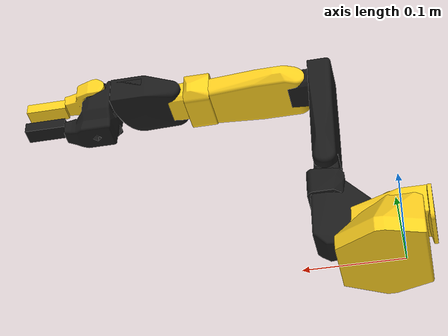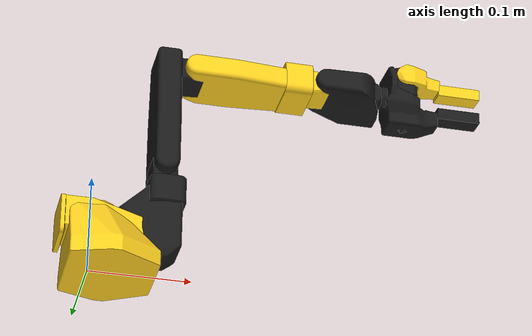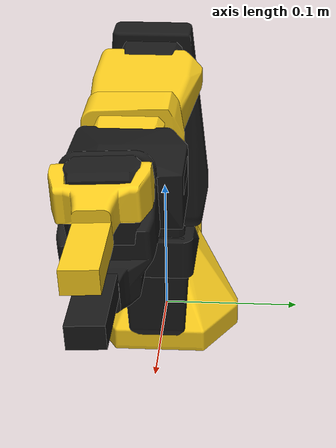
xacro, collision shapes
<?xml version="1.0"?>
<!-- Real SO-101: the sim URDF plus the STS3215 hardware interface. -->
<robot xmlns:xacro="http://www.ros.org/wiki/xacro" name="so101_new_calib">
  <xacro:arg name="port" default="/dev/ttyACM0"/>
  <xacro:arg name="calibration_file" default=""/>
  <!-- true: never write to the servos (limp arm). false: torque on, the arm follows commands. -->
  <xacro:arg name="read_only" default="true"/>
  <!-- Per mille of max torque; 500 = 50 % for the first tests, so a collision stalls instead of breaks. -->
  <xacro:arg name="torque_limit" default="500"/>
  <!-- Servo P gain for the arm joints (factory 32; LeRobot stores 16, which sags 5-6 deg when extended). -->
  <xacro:arg name="p_gain" default="32"/>

  <xacro:include filename="$(find so101_description)/urdf/so101.urdf"/>

  <!-- Arm joints: sim_rad = sign * deg2rad(lerobot_deg - offset_deg), checked against RViz (M8a).
       lo/hi: command limits = the URDF joint limits. -->
  <xacro:macro name="arm_joint" params="name lo hi sign:=1 offset_deg:=0.0">
    <joint name="${name}">
      <param name="sign">${sign}</param>
      <param name="offset_deg">${offset_deg}</param>
      <command_interface name="position">
        <param name="min">${lo}</param>
        <param name="max">${hi}</param>
      </command_interface>
      <state_interface name="position"/>
      <state_interface name="velocity"/>
      <state_interface name="effort"/>  <!-- servo load, fraction of max torque -->
    </joint>
  </xacro:macro>

  <ros2_control name="SO101Real" type="system">
    <hardware>
      <plugin>so101_hardware/SO101System</plugin>
      <param name="port">$(arg port)</param>
      <param name="calibration_file">$(arg calibration_file)</param>
      <param name="read_only">$(arg read_only)</param>
      <param name="torque_limit">$(arg torque_limit)</param>
      <param name="p_gain">$(arg p_gain)</param>
      <param name="max_velocity">2.5</param>  <!-- rad/s, arm joints -->
      <param name="max_tracking_error">0.5</param>  <!-- rad, arm joints: beyond this the driver holds -->
    </hardware>
    <xacro:arm_joint name="shoulder_pan" lo="-1.91986" hi="1.91986"/>
    <xacro:arm_joint name="shoulder_lift" lo="-1.74533" hi="1.74533"/>
    <xacro:arm_joint name="elbow_flex" lo="-1.69" hi="1.69"/>
    <xacro:arm_joint name="wrist_flex" lo="-1.65806" hi="1.65806"/>
    <xacro:arm_joint name="wrist_roll" lo="-2.74385" hi="2.84121"/>
    <joint name="gripper">
      <param name="closed_rad">-0.175</param>
      <param name="open_rad">1.745</param>
      <command_interface name="position">
        <param name="min">-0.174533</param>
        <param name="max">1.74533</param>
      </command_interface>
      <state_interface name="position"/>
      <state_interface name="velocity"/>
      <state_interface name="effort"/>  <!-- servo load, fraction of max torque -->
    </joint>
  </ros2_control>
</robot>

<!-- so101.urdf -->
<robot name="so101_new_calib">

  <material name="3d_printed">
    <color rgba="1.0 0.82 0.12 1.0" />
  </material>
  <material name="sts3215">
    <color rgba="0.1 0.1 0.1 1.0" />
  </material>

  <link name="base_link">
    <inertial>
      <origin xyz="0.0137179 -5.19711e-05 0.0334843" rpy="0 0 0" />
      <mass value="0.147" />
      <inertia ixx="0.000114686" ixy="-4.59787e-07" ixz="4.97151e-06" iyy="0.000136117" iyz="9.75275e-08" izz="0.000130364" />
    </inertial>

    <visual>
      <origin xyz="-0.00636471 -9.94414e-05 -0.0024" rpy="1.5708 -1.67685e-15 1.5708" />
      <geometry>
        <mesh filename="meshes/base_motor_holder_so101_v1.stl" />
      </geometry>
      <material name="3d_printed" />
    </visual>
    <collision>
      <origin xyz="-0.00636471 -9.94414e-05 -0.0024" rpy="1.5708 -1.67685e-15 1.5708" />
      <geometry>
        <mesh filename="meshes/base_motor_holder_so101_v1.stl.convex.obj" />
      </geometry>
    </collision>

    <visual>
      <origin xyz="-0.00636471 -8.97657e-09 -0.0024" rpy="1.5708 -2.78073e-29 1.5708" />
      <geometry>
        <mesh filename="meshes/base_so101_v2.stl" />
      </geometry>
      <material name="3d_printed" />
    </visual>
    <collision>
      <origin xyz="-0.00636471 -8.97657e-09 -0.0024" rpy="1.5708 -2.78073e-29 1.5708" />
      <geometry>
        <mesh filename="meshes/base_so101_v2.stl.convex.obj" />
      </geometry>
    </collision>

    <visual>
      <origin xyz="0.0263353 -8.97657e-09 0.0437" rpy="-8.21148e-16 7.84513e-18 1.249e-15" />
      <geometry>
        <mesh filename="meshes/sts3215_03a_v1.stl" />
      </geometry>
      <material name="sts3215" />
    </visual>
    <collision>
      <origin xyz="0.0263353 -8.97657e-09 0.0437" rpy="-8.21148e-16 7.84513e-18 1.249e-15" />
      <geometry>
        <mesh filename="meshes/sts3215_03a_v1.stl.convex.obj" />
      </geometry>
    </collision>

    <visual>
      <origin xyz="-0.0309827 -0.000199441 0.0474" rpy="1.5708 -1.35493e-14 1.5708" />
      <geometry>
        <mesh filename="meshes/waveshare_mounting_plate_so101_v2.stl" />
      </geometry>
      <material name="3d_printed" />
    </visual>
    <collision>
      <origin xyz="-0.0309827 -0.000199441 0.0474" rpy="1.5708 -1.35493e-14 1.5708" />
      <geometry>
        <mesh filename="meshes/waveshare_mounting_plate_so101_v2.stl.convex.obj" />
      </geometry>
    </collision>
  </link>

  <link name="shoulder_link">
    <inertial>
      <origin xyz="-0.0307604 -1.66727e-05 -0.0252713" rpy="0 0 0" />
      <mass value="0.100006" />
      <inertia ixx="8.3759e-05" ixy="7.55525e-08" ixz="-1.16342e-06" iyy="8.10403e-05" iyz="1.54663e-07" izz="2.39783e-05" />
    </inertial>

    <visual>
      <origin xyz="-0.0303992 0.000422241 -0.0417" rpy="1.5708 1.5708 0" />
      <geometry>
        <mesh filename="meshes/sts3215_03a_v1.stl" />
      </geometry>
      <material name="sts3215" />
    </visual>
    <collision>
      <origin xyz="-0.0303992 0.000422241 -0.0417" rpy="1.5708 1.5708 0" />
      <geometry>
        <mesh filename="meshes/sts3215_03a_v1.stl.convex.obj" />
      </geometry>
    </collision>

    <visual>
      <origin xyz="-0.0675992 -0.000177759 0.0158499" rpy="1.5708 -1.5708 0" />
      <geometry>
        <mesh filename="meshes/motor_holder_so101_base_v1.stl" />
      </geometry>
      <material name="3d_printed" />
    </visual>
    <collision>
      <origin xyz="-0.0675992 -0.000177759 0.0158499" rpy="1.5708 -1.5708 0" />
      <geometry>
        <mesh filename="meshes/motor_holder_so101_base_v1.stl.convex.obj" />
      </geometry>
    </collision>

    <visual>
      <origin xyz="0.0122008 2.22413e-05 0.0464" rpy="-1.5708 2.35221e-33 0" />
      <geometry>
        <mesh filename="meshes/rotation_pitch_so101_v1.stl" />
      </geometry>
      <material name="3d_printed" />
    </visual>
    <collision>
      <origin xyz="0.0122008 2.22413e-05 0.0464" rpy="-1.5708 2.35221e-33 0" />
      <geometry>
        <mesh filename="meshes/rotation_pitch_so101_v1.stl.convex.obj" />
      </geometry>
    </collision>
  </link>

  <link name="upper_arm_link">
    <inertial>
      <origin xyz="-0.0898471 -0.00838224 0.0184089" rpy="0 0 0" />
      <mass value="0.103" />
      <inertia ixx="4.08002e-05" ixy="-1.97819e-05" ixz="-4.03016e-08" iyy="0.000147318" iyz="8.97326e-09" izz="0.000142487" />
    </inertial>

    <visual>
      <origin xyz="-0.11257 -0.0155 0.0187" rpy="-3.14159 -5.27356e-16 -1.5708" />
      <geometry>
        <mesh filename="meshes/sts3215_03a_v1.stl" />
      </geometry>
      <material name="sts3215" />
    </visual>
    <collision>
      <origin xyz="-0.11257 -0.0155 0.0187" rpy="-3.14159 -5.27356e-16 -1.5708" />
      <geometry>
        <mesh filename="meshes/sts3215_03a_v1.stl.convex.obj" />
      </geometry>
    </collision>

    <visual>
      <origin xyz="-0.065085 0.012 0.0182" rpy="3.14159 -0 -1.30911e-30" />
      <geometry>
        <mesh filename="meshes/upper_arm_so101_v1.stl" />
      </geometry>
      <material name="3d_printed" />
    </visual>
    <collision>
      <origin xyz="-0.065085 0.012 0.0182" rpy="3.14159 -0 -1.30911e-30" />
      <geometry>
        <mesh filename="meshes/upper_arm_so101_v1.stl.convex.obj" />
      </geometry>
    </collision>
  </link>

  <link name="lower_arm_link">
    <inertial>
      <origin xyz="-0.0980701 0.00324376 0.0182831" rpy="0 0 0" />
      <mass value="0.104" />
      <inertia ixx="2.87438e-05" ixy="7.41152e-06" ixz="1.26409e-06" iyy="0.000159844" iyz="-4.90188e-08" izz="0.00014529" />
    </inertial>

    <visual>
      <origin xyz="-0.0648499 -0.032 0.0182" rpy="3.14159 -0 6.67202e-31" />
      <geometry>
        <mesh filename="meshes/under_arm_so101_v1.stl" />
      </geometry>
      <material name="3d_printed" />
    </visual>
    <collision>
      <origin xyz="-0.0648499 -0.032 0.0182" rpy="3.14159 -0 6.67202e-31" />
      <geometry>
        <mesh filename="meshes/under_arm_so101_v1.stl.convex.obj" />
      </geometry>
    </collision>

    <visual>
      <origin xyz="-0.0648499 -0.032 0.018" rpy="-3.14159 -2.55351e-15 -1.83387e-30" />
      <geometry>
        <mesh filename="meshes/motor_holder_so101_wrist_v1.stl" />
      </geometry>
      <material name="3d_printed" />
    </visual>
    <collision>
      <origin xyz="-0.0648499 -0.032 0.018" rpy="-3.14159 -2.55351e-15 -1.83387e-30" />
      <geometry>
        <mesh filename="meshes/motor_holder_so101_wrist_v1.stl.convex.obj" />
      </geometry>
    </collision>

    <visual>
      <origin xyz="-0.1224 0.0052 0.0187" rpy="-3.14159 -7.88861e-31 -3.14159" />
      <geometry>
        <mesh filename="meshes/sts3215_03a_v1.stl" />
      </geometry>
      <material name="sts3215" />
    </visual>
    <collision>
      <origin xyz="-0.1224 0.0052 0.0187" rpy="-3.14159 -7.88861e-31 -3.14159" />
      <geometry>
        <mesh filename="meshes/sts3215_03a_v1.stl.convex.obj" />
      </geometry>
    </collision>
  </link>

  <link name="wrist_link">
    <inertial>
      <origin xyz="-0.000103312 -0.0386143 0.0281156" rpy="0 0 0" />
      <mass value="0.079" />
      <inertia ixx="3.68263e-05" ixy="1.7893e-08" ixz="-5.28128e-08" iyy="2.5391e-05" iyz="3.6412e-06" izz="2.1e-05" />
    </inertial>

    <visual>
      <origin xyz="8.32667e-17 -0.0424 0.0306" rpy="1.5708 1.5708 0" />
      <geometry>
        <mesh filename="meshes/sts3215_03a_no_horn_v1.stl" />
      </geometry>
      <material name="sts3215" />
    </visual>
    <collision>
      <origin xyz="8.32667e-17 -0.0424 0.0306" rpy="1.5708 1.5708 0" />
      <geometry>
        <mesh filename="meshes/sts3215_03a_no_horn_v1.stl.convex.obj" />
      </geometry>
    </collision>

    <visual>
      <origin xyz="0 -0.028 0.0181" rpy="-1.5708 -1.5708 0" />
      <geometry>
        <mesh filename="meshes/wrist_roll_pitch_so101_v2.stl" />
      </geometry>
      <material name="3d_printed" />
    </visual>
    <collision>
      <origin xyz="0 -0.028 0.0181" rpy="-1.5708 -1.5708 0" />
      <geometry>
        <mesh filename="meshes/wrist_roll_pitch_so101_v2.stl.convex.obj" />
      </geometry>
    </collision>
  </link>

  <link name="gripper_link">
    <inertial>
      <origin xyz="0.000213627 0.000245138 -0.025187" rpy="0 0 0" />
      <mass value="0.087" />
      <inertia ixx="2.75087e-05" ixy="-3.35241e-07" ixz="-5.7352e-06" iyy="4.33657e-05" iyz="-5.17847e-08" izz="3.45059e-05" />
    </inertial>

    <visual>
      <origin xyz="0.0077 0.0001 -0.0234" rpy="-1.5708 -5.19179e-17 -1.66533e-16" />
      <geometry>
        <mesh filename="meshes/sts3215_03a_v1.stl" />
      </geometry>
      <material name="sts3215" />
    </visual>
    <collision>
      <origin xyz="0.0077 0.0001 -0.0234" rpy="-1.5708 -5.19179e-17 -1.66533e-16" />
      <geometry>
        <mesh filename="meshes/sts3215_03a_v1.stl.convex.obj" />
      </geometry>
    </collision>

    <visual>
      <origin xyz="8.32667e-17 -0.000218214 0.000949706" rpy="-3.14159 -5.55112e-17 0" />
      <geometry>
        <mesh filename="meshes/wrist_roll_follower_so101_v1.stl" />
      </geometry>
      <material name="3d_printed" />
    </visual>
    <collision>
      <origin xyz="8.32667e-17 -0.000218214 0.000949706" rpy="-3.14159 -5.55112e-17 0" />
      <geometry>
        <mesh filename="meshes/wrist_roll_follower_so101_v1.stl.coacd.obj" />
      </geometry>
    </collision>
  <collision><origin xyz="-0.013900 -0.000218 -0.081930" rpy="0 0 0" /><geometry><box size="0.012000 0.018259 0.044991" /></geometry></collision></link>

  <link name="gripper_frame_link">
    <origin xyz="0 0 0" rpy="0 -0 0" />
    <inertial>
      <origin xyz="0 0 0" rpy="0 0 0" />
      <mass value="1e-9" />
      <inertia ixx="0" ixy="0" ixz="0" iyy="0" iyz="0" izz="0" />
    </inertial>
  </link>

  <joint name="gripper_frame_joint" type="fixed">
    <origin xyz="-0.0079 -0.000218121 -0.0981274" rpy="0 3.14159 0" />
    <parent link="gripper_link" />
    <child link="gripper_frame_link" />
    <axis xyz="0 0 0" />
  </joint>

  <link name="moving_jaw_so101_v1_link">
    <inertial>
      <origin xyz="-0.00157495 -0.0300244 0.0192755" rpy="0 0 0" />
      <mass value="0.012" />
      <inertia ixx="6.61427e-06" ixy="-3.19807e-07" ixz="-5.90717e-09" iyy="1.89032e-06" iyz="-1.09945e-07" izz="5.28738e-06" />
    </inertial>

    <visual>
      <origin xyz="-5.55112e-17 -5.55112e-17 0.0189" rpy="9.53145e-17 6.93889e-18 1.24077e-24" />
      <geometry>
        <mesh filename="meshes/moving_jaw_so101_v1.stl" />
      </geometry>
      <material name="3d_printed" />
    </visual>
    <collision>
      <origin xyz="-5.55112e-17 -5.55112e-17 0.0189" rpy="9.53145e-17 6.93889e-18 1.24077e-24" />
      <geometry>
        <mesh filename="meshes/moving_jaw_so101_v1.stl.coacd.obj" />
      </geometry>
    </collision>
  <collision><origin xyz="-0.006300 -0.059824 0.018894" rpy="0 0 0" /><geometry><box size="0.012000 0.044351 0.017765" /></geometry></collision></link>

  <joint name="gripper" type="revolute">
    <origin xyz="0.0202 0.0188 -0.0234" rpy="1.5708 -5.24284e-08 -1.41553e-15" />
    <parent link="gripper_link" />
    <child link="moving_jaw_so101_v1_link" />
    <axis xyz="0 0 1" />
    <limit effort="10" velocity="10" lower="-0.174533" upper="1.74533" />
  </joint>

  <transmission name="gripper_trans">
    <type>transmission_interface/SimpleTransmission</type>
    <joint name="gripper">
      <hardwareInterface>hardware_interface/PositionJointInterface</hardwareInterface>
    </joint>
    <actuator name="motor6">
      <hardwareInterface>hardware_interface/PositionJointInterface</hardwareInterface>
      <mechanicalReduction>1</mechanicalReduction>
    </actuator>
  </transmission>

  <joint name="wrist_roll" type="revolute">
    <origin xyz="5.55112e-17 -0.0611 0.0181" rpy="1.5708 0.0486795 3.14159" />
    <parent link="wrist_link" />
    <child link="gripper_link" />
    <axis xyz="0 0 1" />
    <limit effort="10" velocity="10" lower="-2.74385" upper="2.84121" />
  </joint>

  <transmission name="wrist_roll_trans">
    <type>transmission_interface/SimpleTransmission</type>
    <joint name="wrist_roll">
      <hardwareInterface>hardware_interface/PositionJointInterface</hardwareInterface>
    </joint>
    <actuator name="motor5">
      <hardwareInterface>hardware_interface/PositionJointInterface</hardwareInterface>
      <mechanicalReduction>1</mechanicalReduction>
    </actuator>
  </transmission>

  <joint name="wrist_flex" type="revolute">
    <origin xyz="-0.1349 0.0052 3.62355e-17" rpy="4.02456e-15 8.67362e-16 -1.5708" />
    <parent link="lower_arm_link" />
    <child link="wrist_link" />
    <axis xyz="0 0 1" />
    <limit effort="10" velocity="10" lower="-1.65806" upper="1.65806" />
  </joint>

  <transmission name="wrist_flex_trans">
    <type>transmission_interface/SimpleTransmission</type>
    <joint name="wrist_flex">
      <hardwareInterface>hardware_interface/PositionJointInterface</hardwareInterface>
    </joint>
    <actuator name="motor4">
      <hardwareInterface>hardware_interface/PositionJointInterface</hardwareInterface>
      <mechanicalReduction>1</mechanicalReduction>
    </actuator>
  </transmission>

  <joint name="elbow_flex" type="revolute">
    <origin xyz="-0.11257 -0.028 1.73763e-16" rpy="-3.63608e-16 8.74301e-16 1.5708" />
    <parent link="upper_arm_link" />
    <child link="lower_arm_link" />
    <axis xyz="0 0 1" />
    <limit effort="10" velocity="10" lower="-1.69" upper="1.69" />
  </joint>

  <transmission name="elbow_flex_trans">
    <type>transmission_interface/SimpleTransmission</type>
    <joint name="elbow_flex">
      <hardwareInterface>hardware_interface/PositionJointInterface</hardwareInterface>
    </joint>
    <actuator name="motor3">
      <hardwareInterface>hardware_interface/PositionJointInterface</hardwareInterface>
      <mechanicalReduction>1</mechanicalReduction>
    </actuator>
  </transmission>

  <joint name="shoulder_lift" type="revolute">
    <origin xyz="-0.0303992 -0.0182778 -0.0542" rpy="-1.5708 -1.5708 0" />
    <parent link="shoulder_link" />
    <child link="upper_arm_link" />
    <axis xyz="0 0 1" />
    <limit effort="10" velocity="10" lower="-1.74533" upper="1.74533" />
  </joint>

  <transmission name="shoulder_lift_trans">
    <type>transmission_interface/SimpleTransmission</type>
    <joint name="shoulder_lift">
      <hardwareInterface>hardware_interface/PositionJointInterface</hardwareInterface>
    </joint>
    <actuator name="motor2">
      <hardwareInterface>hardware_interface/PositionJointInterface</hardwareInterface>
      <mechanicalReduction>1</mechanicalReduction>
    </actuator>
  </transmission>

  <joint name="shoulder_pan" type="revolute">
    <origin xyz="0.0388353 -8.97657e-09 0.0624" rpy="3.14159 4.18253e-17 -3.14159" />
    <parent link="base_link" />
    <child link="shoulder_link" />
    <axis xyz="0 0 1" />
    <limit effort="10" velocity="10" lower="-1.91986" upper="1.91986" />
  </joint>

  <transmission name="shoulder_pan_trans">
    <type>transmission_interface/SimpleTransmission</type>
    <joint name="shoulder_pan">
      <hardwareInterface>hardware_interface/PositionJointInterface</hardwareInterface>
    </joint>
    <actuator name="motor1">
      <hardwareInterface>hardware_interface/PositionJointInterface</hardwareInterface>
      <mechanicalReduction>1</mechanicalReduction>
    </actuator>
  </transmission>

<link name="Fixed_Jaw_tip" /><joint name="Fixed_Jaw_tip_joint" type="fixed"><origin xyz="-0.010262 -0.000262 -0.102521" rpy="0 0 0" /><parent link="gripper_link" /><child link="Fixed_Jaw_tip" /></joint><link name="Moving_Jaw_tip" /><joint name="Moving_Jaw_tip_joint" type="fixed"><origin xyz="-0.009840 -0.080109 0.018885" rpy="0 0 0" /><parent link="moving_jaw_so101_v1_link" /><child link="Moving_Jaw_tip" /></joint></robot>
